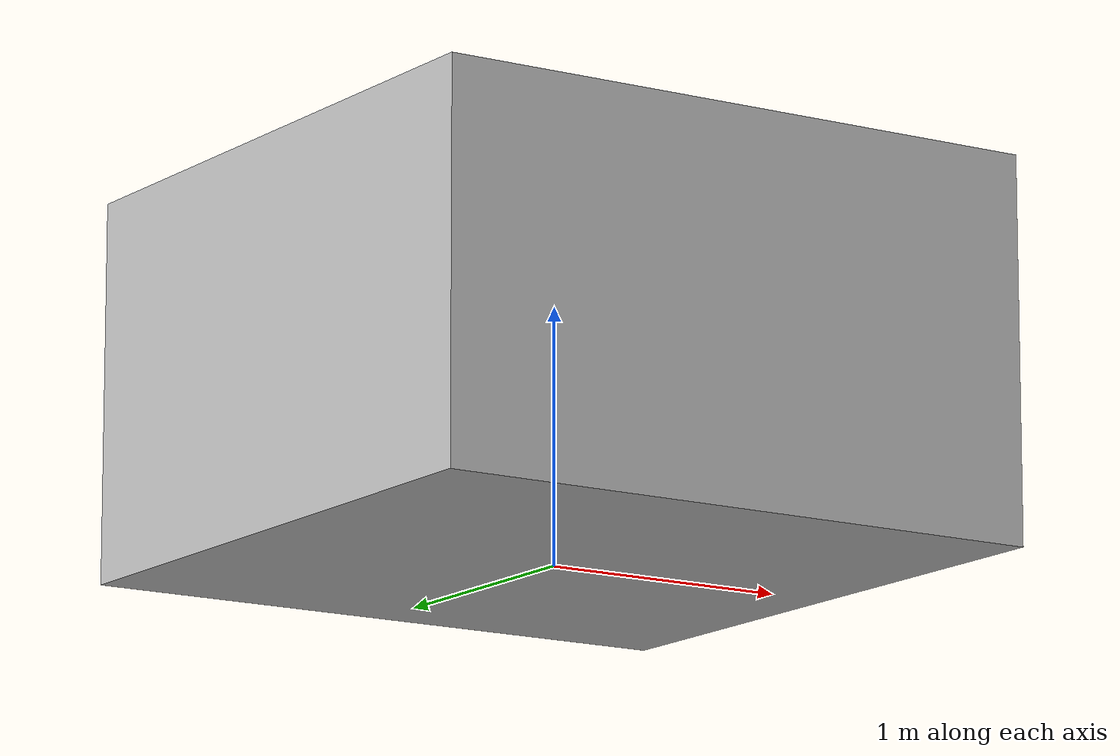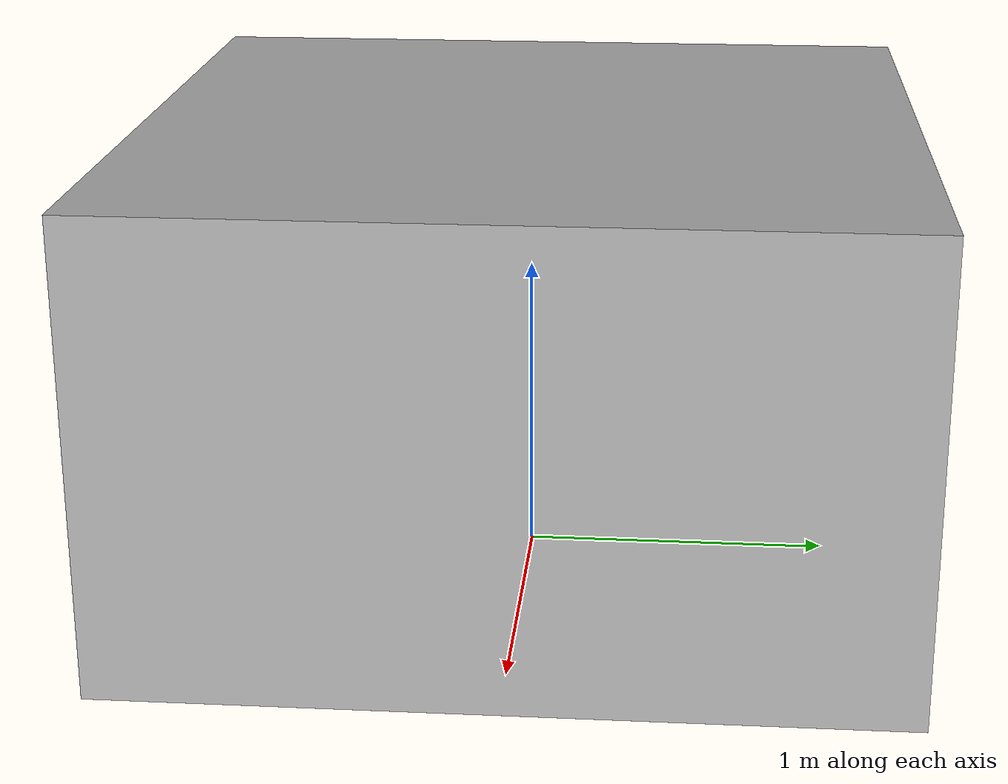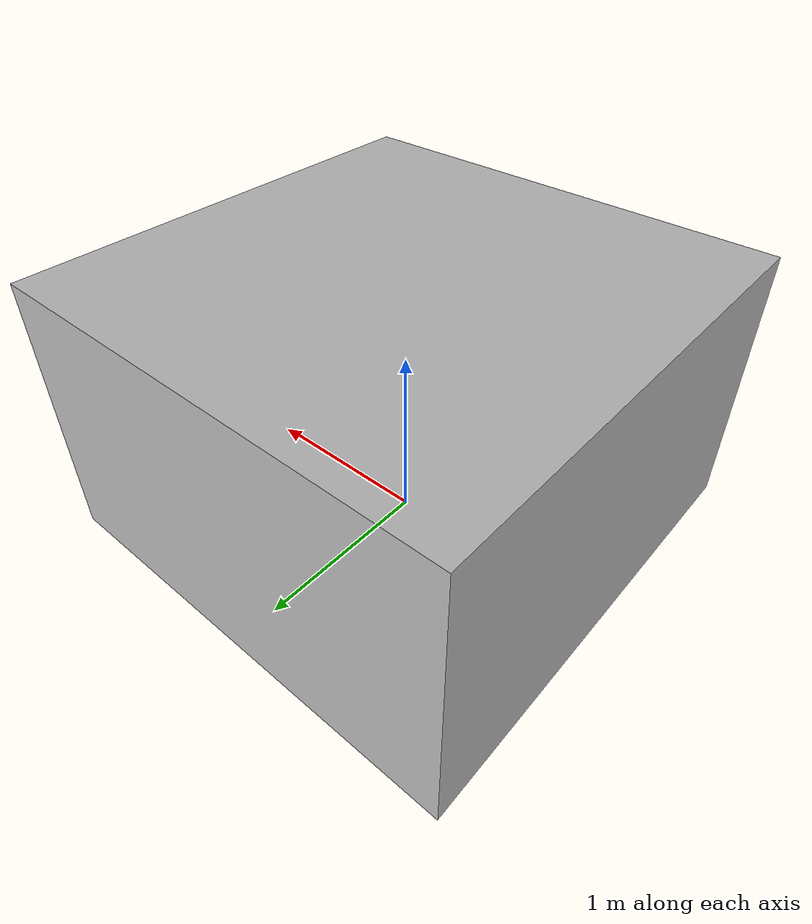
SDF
<?xml version="1.0" ?>
<sdf version="1.5">

<model name="actor_model">
  <pose>0 0 0.75 0 0 0</pose>
  <link name="link">
    <collision name="collision">
      <geometry>
        <box>
          <size>2.5 2.5 1.5</size>
        </box>
      </geometry>
    </collision>

    <visual name="visual">
      <geometry>
        <box>
          <size>2.5 2.5 1.5</size>
        </box>
      </geometry>
    </visual>

  </link>
</model>

</sdf>
